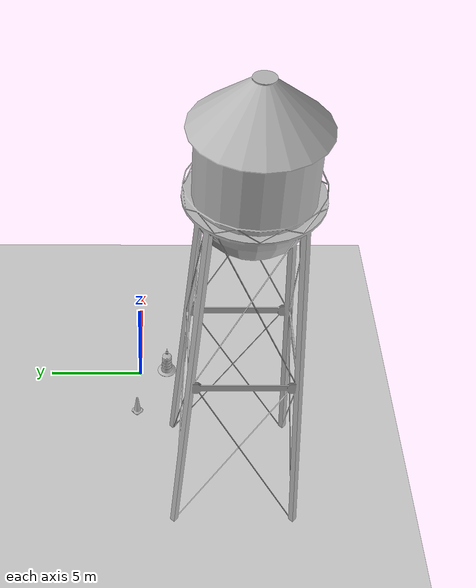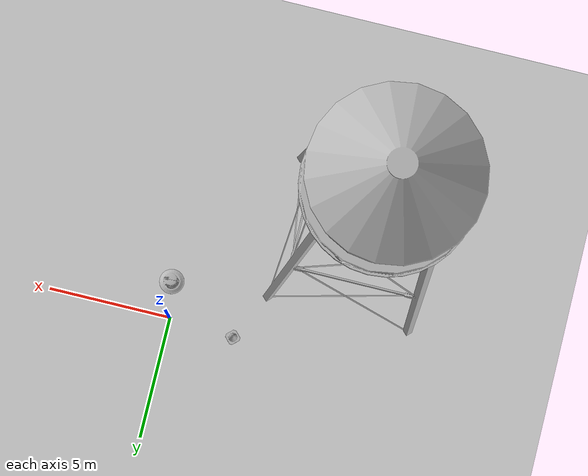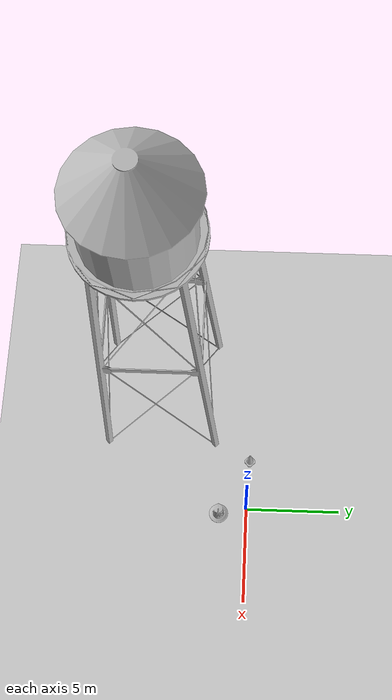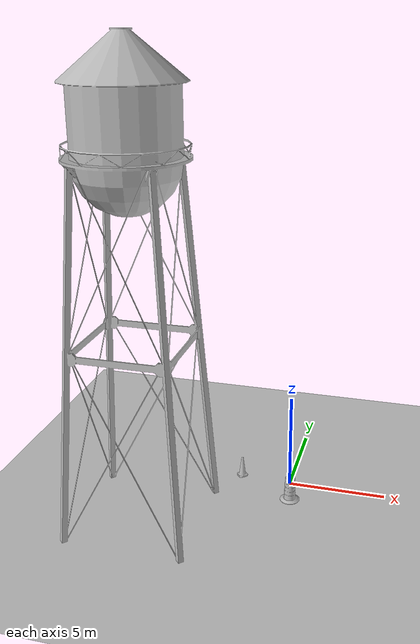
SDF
<sdf version="1.7">
 <world name="default">
  <model name="ground_plane">
   <static>1</static>
   <link name="link">
    <collision name="collision">
     <geometry><plane><normal>0 0 1</normal><size>100 100</size></plane></geometry>
     <surface>
      <contact><collide_bitmask>65535</collide_bitmask></contact>
      <friction><ode><mu>100</mu><mu2>50</mu2></ode></friction>
     </surface>
    </collision>
    <visual name="visual">
     <cast_shadows>0</cast_shadows>
     <geometry><plane><normal>0 0 1</normal><size>100 100</size></plane></geometry>
     <material>
      <script><uri>file://media/materials/scripts/gazebo.material</uri><name>Gazebo/Grey</name></script>
     </material>
    </visual>
   </link>
  </model>
  <model name="Construction Cone_0">
   <link name="link">
    <collision name="collision">
     <geometry>
      <mesh><scale>10 10 10</scale><uri>model://construction_cone/meshes/construction_cone.dae</uri></mesh>
     </geometry>
    </collision>
    <visual name="visual">
     <geometry>
      <mesh><scale>10 10 10</scale><uri>model://construction_cone/meshes/construction_cone.dae</uri></mesh>
     </geometry>
    </visual>
    <inertial>
     <inertia><ixx>1</ixx><ixy>0</ixy><ixz>0</ixz><iyy>1</iyy><iyz>0</iyz><izz>1</izz></inertia>
     <mass>1</mass>
    </inertial>
   </link>
   <pose>-2.66842 0.153423 -0 0 0 -0.819479</pose>
  </model>
  <model name="Construction Barrel">
   <link name="link">
    <inertial>
     <pose>0 0 0.4 0 -0 0</pose>
     <mass>500</mass>
     <inertia><ixx>51.2096</ixx><iyy>51.2096</iyy><izz>25</izz><ixy>0</ixy><ixz>0</ixz><iyz>0</iyz></inertia>
    </inertial>
    <collision name="collision">
     <geometry><mesh><uri>model://construction_barrel/meshes/construction_barrel.dae</uri></mesh></geometry>
    </collision>
    <visual name="visual">
     <geometry><mesh><uri>model://construction_barrel/meshes/construction_barrel.dae</uri></mesh></geometry>
    </visual>
   </link>
   <pose>0.279815 -1.45858 -1e-06 1e-06 -9e-06 -5e-05</pose>
  </model>
  <model name="water_tower">
   <static>1</static>
   <link name="link">
    <collision name="collision">
     <geometry><mesh><uri>model://water_tower/meshes/water_tower.dae</uri></mesh></geometry>
    </collision>
    <visual name="visual">
     <geometry><mesh><uri>model://water_tower/meshes/water_tower.dae</uri></mesh></geometry>
    </visual>
   </link>
   <pose>-6.56833 -4.70062 0 0 -0 0</pose>
  </model>
 </world>
</sdf>
